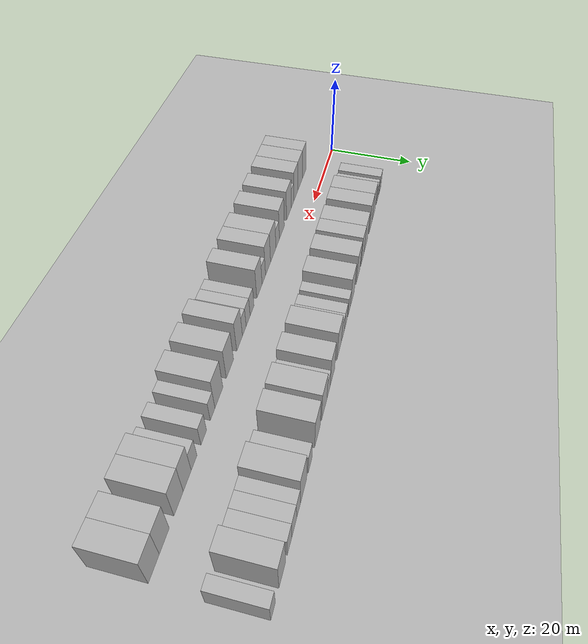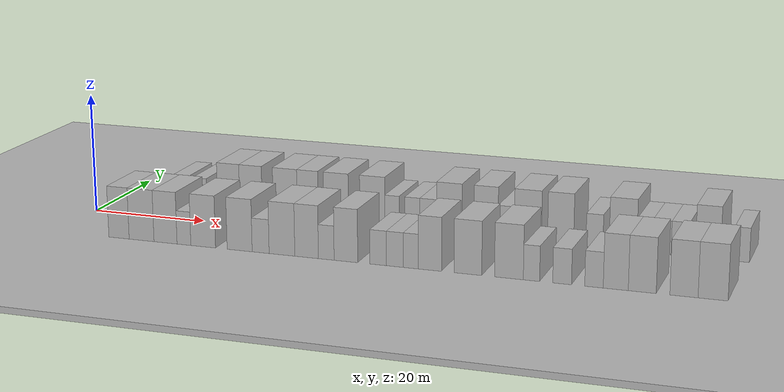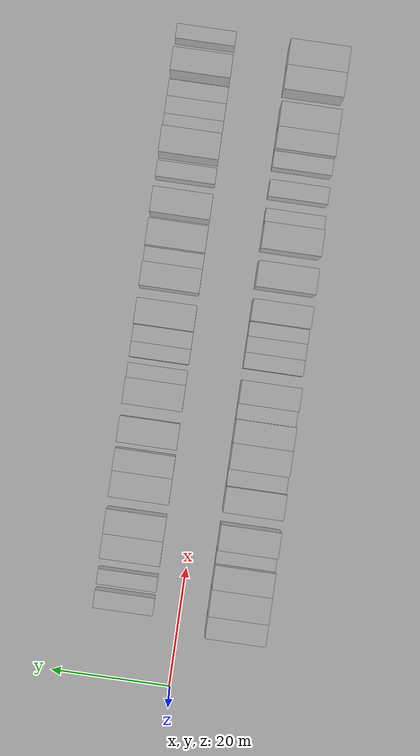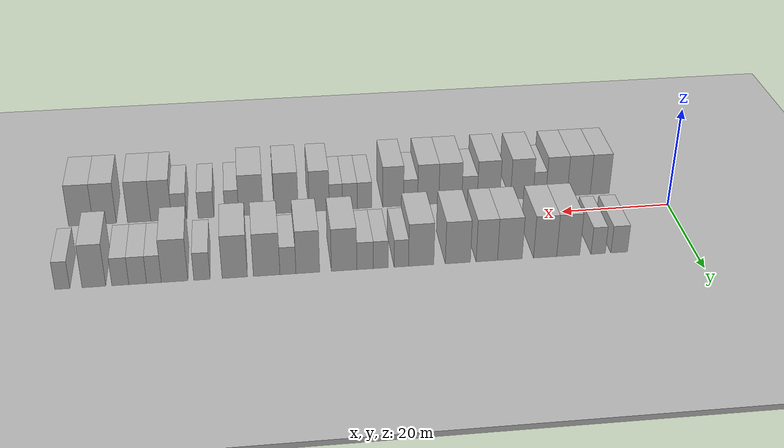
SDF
<sdf version="1.6">
 <world name="default">
  <include><name>ground_plane_1</name><uri>model://HANNAS_ground_plane</uri></include>
  <include>
   <name>ground_plane_2</name>
   <uri>model://HANNAS_ground_plane</uri>
   <pose>100 0 0  0 0 0</pose>
  </include>
  <model name="building_1">
   <static>1</static>
   <pose>13.4734 9.5000 0 0.000000 0.000000 1.570796</pose>
   <link name="link">
    <pose>0 0 3.00 0 0 0</pose>
    <collision name="collision"><geometry><box><size>10.0000 2.9468 6.0000</size></box></geometry></collision>
    <visual name="visual">
     <cast_shadows>0</cast_shadows>
     <geometry><box><size>10.0000 2.9468 6.0000</size></box></geometry>
     <material>
      <script>
       <uri>model://HANNAS_wall/materials/scripts</uri>
       <uri>model://HANNAS_wall/materials/textures</uri>
       <name>vrc/HANNAS_wall</name>
      </script>
     </material>
    </visual>
   </link>
  </model>
  <model name="building_2">
   <static>1</static>
   <pose>17.2123 9.5000 0 0.000000 0.000000 1.570796</pose>
   <link name="link">
    <pose>0 0 3.00 0 0 0</pose>
    <collision name="collision"><geometry><box><size>10.0000 2.5310 6.0000</size></box></geometry></collision>
    <visual name="visual">
     <cast_shadows>0</cast_shadows>
     <geometry><box><size>10.0000 2.5310 6.0000</size></box></geometry>
     <material>
      <script>
       <uri>model://HANNAS_wall/materials/scripts</uri>
       <uri>model://HANNAS_wall/materials/textures</uri>
       <name>vrc/HANNAS_wall</name>
      </script>
     </material>
    </visual>
   </link>
  </model>
  <model name="building_3">
   <static>1</static>
   <pose>22.5105 9.5000 0 0.000000 0.000000 1.570796</pose>
   <link name="link">
    <pose>0 0 4.50 0 0 0</pose>
    <collision name="collision"><geometry><box><size>10.0000 4.0656 9.0000</size></box></geometry></collision>
    <visual name="visual">
     <cast_shadows>0</cast_shadows>
     <geometry><box><size>10.0000 4.0656 9.0000</size></box></geometry>
     <material>
      <script>
       <uri>model://HANNAS_wall/materials/scripts</uri>
       <uri>model://HANNAS_wall/materials/textures</uri>
       <name>vrc/HANNAS_wall</name>
      </script>
     </material>
    </visual>
   </link>
  </model>
  <model name="building_4">
   <static>1</static>
   <pose>26.5862 9.5000 0 0.000000 0.000000 1.570796</pose>
   <link name="link">
    <pose>0 0 4.50 0 0 0</pose>
    <collision name="collision"><geometry><box><size>10.0000 4.0858 9.0000</size></box></geometry></collision>
    <visual name="visual">
     <cast_shadows>0</cast_shadows>
     <geometry><box><size>10.0000 4.0858 9.0000</size></box></geometry>
     <material>
      <script>
       <uri>model://HANNAS_wall/materials/scripts</uri>
       <uri>model://HANNAS_wall/materials/textures</uri>
       <name>vrc/HANNAS_wall</name>
      </script>
     </material>
    </visual>
   </link>
  </model>
  <model name="building_5">
   <static>1</static>
   <pose>32.7871 9.5000 0 0.000000 0.000000 1.570796</pose>
   <link name="link">
    <pose>0 0 4.50 0 0 0</pose>
    <collision name="collision"><geometry><box><size>10.0000 4.3159 9.0000</size></box></geometry></collision>
    <visual name="visual">
     <cast_shadows>0</cast_shadows>
     <geometry><box><size>10.0000 4.3159 9.0000</size></box></geometry>
     <material>
      <script>
       <uri>model://HANNAS_wall/materials/scripts</uri>
       <uri>model://HANNAS_wall/materials/textures</uri>
       <name>vrc/HANNAS_wall</name>
      </script>
     </material>
    </visual>
   </link>
  </model>
  <model name="building_6">
   <static>1</static>
   <pose>36.8116 9.5000 0 0.000000 0.000000 1.570796</pose>
   <link name="link">
    <pose>0 0 4.50 0 0 0</pose>
    <collision name="collision"><geometry><box><size>10.0000 3.7332 9.0000</size></box></geometry></collision>
    <visual name="visual">
     <cast_shadows>0</cast_shadows>
     <geometry><box><size>10.0000 3.7332 9.0000</size></box></geometry>
     <material>
      <script>
       <uri>model://HANNAS_wall/materials/scripts</uri>
       <uri>model://HANNAS_wall/materials/textures</uri>
       <name>vrc/HANNAS_wall</name>
      </script>
     </material>
    </visual>
   </link>
  </model>
  <model name="building_7">
   <static>1</static>
   <pose>41.8527 9.5000 0 0.000000 0.000000 1.570796</pose>
   <link name="link">
    <pose>0 0 4.50 0 0 0</pose>
    <collision name="collision"><geometry><box><size>10.0000 4.3490 9.0000</size></box></geometry></collision>
    <visual name="visual">
     <cast_shadows>0</cast_shadows>
     <geometry><box><size>10.0000 4.3490 9.0000</size></box></geometry>
     <material>
      <script>
       <uri>model://HANNAS_wall/materials/scripts</uri>
       <uri>model://HANNAS_wall/materials/textures</uri>
       <name>vrc/HANNAS_wall</name>
      </script>
     </material>
    </visual>
   </link>
  </model>
  <model name="building_8">
   <static>1</static>
   <pose>48.2076 9.5000 0 0.000000 0.000000 1.570796</pose>
   <link name="link">
    <pose>0 0 4.50 0 0 0</pose>
    <collision name="collision"><geometry><box><size>10.0000 4.3607 9.0000</size></box></geometry></collision>
    <visual name="visual">
     <cast_shadows>0</cast_shadows>
     <geometry><box><size>10.0000 4.3607 9.0000</size></box></geometry>
     <material>
      <script>
       <uri>model://HANNAS_wall/materials/scripts</uri>
       <uri>model://HANNAS_wall/materials/textures</uri>
       <name>vrc/HANNAS_wall</name>
      </script>
     </material>
    </visual>
   </link>
  </model>
  <model name="building_9">
   <static>1</static>
   <pose>51.6281 9.5000 0 0.000000 0.000000 1.570796</pose>
   <link name="link">
    <pose>0 0 3.00 0 0 0</pose>
    <collision name="collision"><geometry><box><size>10.0000 2.4804 6.0000</size></box></geometry></collision>
    <visual name="visual">
     <cast_shadows>0</cast_shadows>
     <geometry><box><size>10.0000 2.4804 6.0000</size></box></geometry>
     <material>
      <script>
       <uri>model://HANNAS_wall/materials/scripts</uri>
       <uri>model://HANNAS_wall/materials/textures</uri>
       <name>vrc/HANNAS_wall</name>
      </script>
     </material>
    </visual>
   </link>
  </model>
  <model name="building_10">
   <static>1</static>
   <pose>55.1466 9.5000 0 0.000000 0.000000 1.570796</pose>
   <link name="link">
    <pose>0 0 3.00 0 0 0</pose>
    <collision name="collision"><geometry><box><size>10.0000 2.5566 6.0000</size></box></geometry></collision>
    <visual name="visual">
     <cast_shadows>0</cast_shadows>
     <geometry><box><size>10.0000 2.5566 6.0000</size></box></geometry>
     <material>
      <script>
       <uri>model://HANNAS_wall/materials/scripts</uri>
       <uri>model://HANNAS_wall/materials/textures</uri>
       <name>vrc/HANNAS_wall</name>
      </script>
     </material>
    </visual>
   </link>
  </model>
  <model name="building_11">
   <static>1</static>
   <pose>57.8463 9.5000 0 0.000000 0.000000 1.570796</pose>
   <link name="link">
    <pose>0 0 3.00 0 0 0</pose>
    <collision name="collision"><geometry><box><size>10.0000 2.8428 6.0000</size></box></geometry></collision>
    <visual name="visual">
     <cast_shadows>0</cast_shadows>
     <geometry><box><size>10.0000 2.8428 6.0000</size></box></geometry>
     <material>
      <script>
       <uri>model://HANNAS_wall/materials/scripts</uri>
       <uri>model://HANNAS_wall/materials/textures</uri>
       <name>vrc/HANNAS_wall</name>
      </script>
     </material>
    </visual>
   </link>
  </model>
  <model name="building_12">
   <static>1</static>
   <pose>61.4304 9.5000 0 0.000000 0.000000 1.570796</pose>
   <link name="link">
    <pose>0 0 4.50 0 0 0</pose>
    <collision name="collision"><geometry><box><size>10.0000 4.3254 9.0000</size></box></geometry></collision>
    <visual name="visual">
     <cast_shadows>0</cast_shadows>
     <geometry><box><size>10.0000 4.3254 9.0000</size></box></geometry>
     <material>
      <script>
       <uri>model://HANNAS_wall/materials/scripts</uri>
       <uri>model://HANNAS_wall/materials/textures</uri>
       <name>vrc/HANNAS_wall</name>
      </script>
     </material>
    </visual>
   </link>
  </model>
  <model name="building_13">
   <static>1</static>
   <pose>67.6052 9.5000 0 0.000000 0.000000 1.570796</pose>
   <link name="link">
    <pose>0 0 4.50 0 0 0</pose>
    <collision name="collision"><geometry><box><size>10.0000 4.0241 9.0000</size></box></geometry></collision>
    <visual name="visual">
     <cast_shadows>0</cast_shadows>
     <geometry><box><size>10.0000 4.0241 9.0000</size></box></geometry>
     <material>
      <script>
       <uri>model://HANNAS_wall/materials/scripts</uri>
       <uri>model://HANNAS_wall/materials/textures</uri>
       <name>vrc/HANNAS_wall</name>
      </script>
     </material>
    </visual>
   </link>
  </model>
  <model name="building_14">
   <static>1</static>
   <pose>70.9708 9.5000 0 0.000000 0.000000 1.570796</pose>
   <link name="link">
    <pose>0 0 3.00 0 0 0</pose>
    <collision name="collision"><geometry><box><size>10.0000 2.7072 6.0000</size></box></geometry></collision>
    <visual name="visual">
     <cast_shadows>0</cast_shadows>
     <geometry><box><size>10.0000 2.7072 6.0000</size></box></geometry>
     <material>
      <script>
       <uri>model://HANNAS_wall/materials/scripts</uri>
       <uri>model://HANNAS_wall/materials/textures</uri>
       <name>vrc/HANNAS_wall</name>
      </script>
     </material>
    </visual>
   </link>
  </model>
  <model name="building_15">
   <static>1</static>
   <pose>74.5617 9.5000 0 0.000000 0.000000 1.570796</pose>
   <link name="link">
    <pose>0 0 4.50 0 0 0</pose>
    <collision name="collision"><geometry><box><size>10.0000 4.4746 9.0000</size></box></geometry></collision>
    <visual name="visual">
     <cast_shadows>0</cast_shadows>
     <geometry><box><size>10.0000 4.4746 9.0000</size></box></geometry>
     <material>
      <script>
       <uri>model://HANNAS_wall/materials/scripts</uri>
       <uri>model://HANNAS_wall/materials/textures</uri>
       <name>vrc/HANNAS_wall</name>
      </script>
     </material>
    </visual>
   </link>
  </model>
  <model name="building_16">
   <static>1</static>
   <pose>79.9236 9.5000 0 0.000000 0.000000 1.570796</pose>
   <link name="link">
    <pose>0 0 4.50 0 0 0</pose>
    <collision name="collision"><geometry><box><size>10.0000 4.2492 9.0000</size></box></geometry></collision>
    <visual name="visual">
     <cast_shadows>0</cast_shadows>
     <geometry><box><size>10.0000 4.2492 9.0000</size></box></geometry>
     <material>
      <script>
       <uri>model://HANNAS_wall/materials/scripts</uri>
       <uri>model://HANNAS_wall/materials/textures</uri>
       <name>vrc/HANNAS_wall</name>
      </script>
     </material>
    </visual>
   </link>
  </model>
  <model name="building_17">
   <static>1</static>
   <pose>85.4104 9.5000 0 0.000000 0.000000 1.570796</pose>
   <link name="link">
    <pose>0 0 3.00 0 0 0</pose>
    <collision name="collision"><geometry><box><size>10.0000 2.7242 6.0000</size></box></geometry></collision>
    <visual name="visual">
     <cast_shadows>0</cast_shadows>
     <geometry><box><size>10.0000 2.7242 6.0000</size></box></geometry>
     <material>
      <script>
       <uri>model://HANNAS_wall/materials/scripts</uri>
       <uri>model://HANNAS_wall/materials/textures</uri>
       <name>vrc/HANNAS_wall</name>
      </script>
     </material>
    </visual>
   </link>
  </model>
  <model name="building_18">
   <static>1</static>
   <pose>89.9734 9.5000 0 0.000000 0.000000 1.570796</pose>
   <link name="link">
    <pose>0 0 4.50 0 0 0</pose>
    <collision name="collision"><geometry><box><size>10.0000 4.4019 9.0000</size></box></geometry></collision>
    <visual name="visual">
     <cast_shadows>0</cast_shadows>
     <geometry><box><size>10.0000 4.4019 9.0000</size></box></geometry>
     <material>
      <script>
       <uri>model://HANNAS_wall/materials/scripts</uri>
       <uri>model://HANNAS_wall/materials/textures</uri>
       <name>vrc/HANNAS_wall</name>
      </script>
     </material>
    </visual>
   </link>
  </model>
  <model name="building_19">
   <static>1</static>
   <pose>93.4013 9.5000 0 0.000000 0.000000 1.570796</pose>
   <link name="link">
    <pose>0 0 3.00 0 0 0</pose>
    <collision name="collision"><geometry><box><size>10.0000 2.4539 6.0000</size></box></geometry></collision>
    <visual name="visual">
     <cast_shadows>0</cast_shadows>
     <geometry><box><size>10.0000 2.4539 6.0000</size></box></geometry>
     <material>
      <script>
       <uri>model://HANNAS_wall/materials/scripts</uri>
       <uri>model://HANNAS_wall/materials/textures</uri>
       <name>vrc/HANNAS_wall</name>
      </script>
     </material>
    </visual>
   </link>
  </model>
  <model name="building_20">
   <static>1</static>
   <pose>96.1024 9.5000 0 0.000000 0.000000 1.570796</pose>
   <link name="link">
    <pose>0 0 3.00 0 0 0</pose>
    <collision name="collision"><geometry><box><size>10.0000 2.9482 6.0000</size></box></geometry></collision>
    <visual name="visual">
     <cast_shadows>0</cast_shadows>
     <geometry><box><size>10.0000 2.9482 6.0000</size></box></geometry>
     <material>
      <script>
       <uri>model://HANNAS_wall/materials/scripts</uri>
       <uri>model://HANNAS_wall/materials/textures</uri>
       <name>vrc/HANNAS_wall</name>
      </script>
     </material>
    </visual>
   </link>
  </model>
  <model name="building_21">
   <static>1</static>
   <pose>98.9699 9.5000 0 0.000000 0.000000 1.570796</pose>
   <link name="link">
    <pose>0 0 3.00 0 0 0</pose>
    <collision name="collision"><geometry><box><size>10.0000 2.7868 6.0000</size></box></geometry></collision>
    <visual name="visual">
     <cast_shadows>0</cast_shadows>
     <geometry><box><size>10.0000 2.7868 6.0000</size></box></geometry>
     <material>
      <script>
       <uri>model://HANNAS_wall/materials/scripts</uri>
       <uri>model://HANNAS_wall/materials/textures</uri>
       <name>vrc/HANNAS_wall</name>
      </script>
     </material>
    </visual>
   </link>
  </model>
  <model name="building_22">
   <static>1</static>
   <pose>103.3101 9.5000 0 0.000000 0.000000 1.570796</pose>
   <link name="link">
    <pose>0 0 4.50 0 0 0</pose>
    <collision name="collision"><geometry><box><size>10.0000 3.8935 9.0000</size></box></geometry></collision>
    <visual name="visual">
     <cast_shadows>0</cast_shadows>
     <geometry><box><size>10.0000 3.8935 9.0000</size></box></geometry>
     <material>
      <script>
       <uri>model://HANNAS_wall/materials/scripts</uri>
       <uri>model://HANNAS_wall/materials/textures</uri>
       <name>vrc/HANNAS_wall</name>
      </script>
     </material>
    </visual>
   </link>
  </model>
  <model name="building_23">
   <static>1</static>
   <pose>108.4847 9.5000 0 0.000000 0.000000 1.570796</pose>
   <link name="link">
    <pose>0 0 3.00 0 0 0</pose>
    <collision name="collision"><geometry><box><size>10.0000 2.4558 6.0000</size></box></geometry></collision>
    <visual name="visual">
     <cast_shadows>0</cast_shadows>
     <geometry><box><size>10.0000 2.4558 6.0000</size></box></geometry>
     <material>
      <script>
       <uri>model://HANNAS_wall/materials/scripts</uri>
       <uri>model://HANNAS_wall/materials/textures</uri>
       <name>vrc/HANNAS_wall</name>
      </script>
     </material>
    </visual>
   </link>
  </model>
  <model name="building_49">
   <static>1</static>
   <pose>11.8109 -9.5000 0 0.000000 0.000000 1.570796</pose>
   <link name="link">
    <pose>0 0 4.50 0 0 0</pose>
    <collision name="collision"><geometry><box><size>10.0000 3.6219 9.0000</size></box></geometry></collision>
    <visual name="visual">
     <cast_shadows>0</cast_shadows>
     <geometry><box><size>10.0000 3.6219 9.0000</size></box></geometry>
     <material>
      <script>
       <uri>model://HANNAS_wall/materials/scripts</uri>
       <uri>model://HANNAS_wall/materials/textures</uri>
       <name>vrc/HANNAS_wall</name>
      </script>
     </material>
    </visual>
   </link>
  </model>
  <model name="building_50">
   <static>1</static>
   <pose>15.8263 -9.5000 0 0.000000 0.000000 1.570796</pose>
   <link name="link">
    <pose>0 0 4.50 0 0 0</pose>
    <collision name="collision"><geometry><box><size>10.0000 4.4089 9.0000</size></box></geometry></collision>
    <visual name="visual">
     <cast_shadows>0</cast_shadows>
     <geometry><box><size>10.0000 4.4089 9.0000</size></box></geometry>
     <material>
      <script>
       <uri>model://HANNAS_wall/materials/scripts</uri>
       <uri>model://HANNAS_wall/materials/textures</uri>
       <name>vrc/HANNAS_wall</name>
      </script>
     </material>
    </visual>
   </link>
  </model>
  <model name="building_51">
   <static>1</static>
   <pose>20.0552 -9.5000 0 0.000000 0.000000 1.570796</pose>
   <link name="link">
    <pose>0 0 4.50 0 0 0</pose>
    <collision name="collision"><geometry><box><size>10.0000 4.0487 9.0000</size></box></geometry></collision>
    <visual name="visual">
     <cast_shadows>0</cast_shadows>
     <geometry><box><size>10.0000 4.0487 9.0000</size></box></geometry>
     <material>
      <script>
       <uri>model://HANNAS_wall/materials/scripts</uri>
       <uri>model://HANNAS_wall/materials/textures</uri>
       <name>vrc/HANNAS_wall</name>
      </script>
     </material>
    </visual>
   </link>
  </model>
  <model name="building_52">
   <static>1</static>
   <pose>23.2805 -9.5000 0 0.000000 0.000000 1.570796</pose>
   <link name="link">
    <pose>0 0 3.00 0 0 0</pose>
    <collision name="collision"><geometry><box><size>10.0000 2.4020 6.0000</size></box></geometry></collision>
    <visual name="visual">
     <cast_shadows>0</cast_shadows>
     <geometry><box><size>10.0000 2.4020 6.0000</size></box></geometry>
     <material>
      <script>
       <uri>model://HANNAS_wall/materials/scripts</uri>
       <uri>model://HANNAS_wall/materials/textures</uri>
       <name>vrc/HANNAS_wall</name>
      </script>
     </material>
    </visual>
   </link>
  </model>
  <model name="building_53">
   <static>1</static>
   <pose>26.6214 -9.5000 0 0.000000 0.000000 1.570796</pose>
   <link name="link">
    <pose>0 0 4.50 0 0 0</pose>
    <collision name="collision"><geometry><box><size>10.0000 4.2799 9.0000</size></box></geometry></collision>
    <visual name="visual">
     <cast_shadows>0</cast_shadows>
     <geometry><box><size>10.0000 4.2799 9.0000</size></box></geometry>
     <material>
      <script>
       <uri>model://HANNAS_wall/materials/scripts</uri>
       <uri>model://HANNAS_wall/materials/textures</uri>
       <name>vrc/HANNAS_wall</name>
      </script>
     </material>
    </visual>
   </link>
  </model>
  <model name="building_54">
   <static>1</static>
   <pose>32.8958 -9.5000 0 0.000000 0.000000 1.570796</pose>
   <link name="link">
    <pose>0 0 4.50 0 0 0</pose>
    <collision name="collision"><geometry><box><size>10.0000 4.2688 9.0000</size></box></geometry></collision>
    <visual name="visual">
     <cast_shadows>0</cast_shadows>
     <geometry><box><size>10.0000 4.2688 9.0000</size></box></geometry>
     <material>
      <script>
       <uri>model://HANNAS_wall/materials/scripts</uri>
       <uri>model://HANNAS_wall/materials/textures</uri>
       <name>vrc/HANNAS_wall</name>
      </script>
     </material>
    </visual>
   </link>
  </model>
  <model name="building_55">
   <static>1</static>
   <pose>36.4688 -9.5000 0 0.000000 0.000000 1.570796</pose>
   <link name="link">
    <pose>0 0 3.00 0 0 0</pose>
    <collision name="collision"><geometry><box><size>10.0000 2.8772 6.0000</size></box></geometry></collision>
    <visual name="visual">
     <cast_shadows>0</cast_shadows>
     <geometry><box><size>10.0000 2.8772 6.0000</size></box></geometry>
     <material>
      <script>
       <uri>model://HANNAS_wall/materials/scripts</uri>
       <uri>model://HANNAS_wall/materials/textures</uri>
       <name>vrc/HANNAS_wall</name>
      </script>
     </material>
    </visual>
   </link>
  </model>
  <model name="building_56">
   <static>1</static>
   <pose>40.0684 -9.5000 0 0.000000 0.000000 1.570796</pose>
   <link name="link">
    <pose>0 0 4.50 0 0 0</pose>
    <collision name="collision"><geometry><box><size>10.0000 4.3221 9.0000</size></box></geometry></collision>
    <visual name="visual">
     <cast_shadows>0</cast_shadows>
     <geometry><box><size>10.0000 4.3221 9.0000</size></box></geometry>
     <material>
      <script>
       <uri>model://HANNAS_wall/materials/scripts</uri>
       <uri>model://HANNAS_wall/materials/textures</uri>
       <name>vrc/HANNAS_wall</name>
      </script>
     </material>
    </visual>
   </link>
  </model>
  <model name="building_57">
   <static>1</static>
   <pose>44.1926 -9.5000 0 0.000000 0.000000 1.570796</pose>
   <link name="link">
    <pose>0 0 4.50 0 0 0</pose>
    <collision name="collision"><geometry><box><size>10.0000 3.9262 9.0000</size></box></geometry></collision>
    <visual name="visual">
     <cast_shadows>0</cast_shadows>
     <geometry><box><size>10.0000 3.9262 9.0000</size></box></geometry>
     <material>
      <script>
       <uri>model://HANNAS_wall/materials/scripts</uri>
       <uri>model://HANNAS_wall/materials/textures</uri>
       <name>vrc/HANNAS_wall</name>
      </script>
     </material>
    </visual>
   </link>
  </model>
  <model name="building_58">
   <static>1</static>
   <pose>47.4564 -9.5000 0 0.000000 0.000000 1.570796</pose>
   <link name="link">
    <pose>0 0 3.00 0 0 0</pose>
    <collision name="collision"><geometry><box><size>10.0000 2.6013 6.0000</size></box></geometry></collision>
    <visual name="visual">
     <cast_shadows>0</cast_shadows>
     <geometry><box><size>10.0000 2.6013 6.0000</size></box></geometry>
     <material>
      <script>
       <uri>model://HANNAS_wall/materials/scripts</uri>
       <uri>model://HANNAS_wall/materials/textures</uri>
       <name>vrc/HANNAS_wall</name>
      </script>
     </material>
    </visual>
   </link>
  </model>
  <model name="building_59">
   <static>1</static>
   <pose>50.6944 -9.5000 0 0.000000 0.000000 1.570796</pose>
   <link name="link">
    <pose>0 0 4.50 0 0 0</pose>
    <collision name="collision"><geometry><box><size>10.0000 3.8748 9.0000</size></box></geometry></collision>
    <visual name="visual">
     <cast_shadows>0</cast_shadows>
     <geometry><box><size>10.0000 3.8748 9.0000</size></box></geometry>
     <material>
      <script>
       <uri>model://HANNAS_wall/materials/scripts</uri>
       <uri>model://HANNAS_wall/materials/textures</uri>
       <name>vrc/HANNAS_wall</name>
      </script>
     </material>
    </visual>
   </link>
  </model>
  <model name="building_60">
   <static>1</static>
   <pose>55.9713 -9.5000 0 0.000000 0.000000 1.570796</pose>
   <link name="link">
    <pose>0 0 3.00 0 0 0</pose>
    <collision name="collision"><geometry><box><size>10.0000 2.6790 6.0000</size></box></geometry></collision>
    <visual name="visual">
     <cast_shadows>0</cast_shadows>
     <geometry><box><size>10.0000 2.6790 6.0000</size></box></geometry>
     <material>
      <script>
       <uri>model://HANNAS_wall/materials/scripts</uri>
       <uri>model://HANNAS_wall/materials/textures</uri>
       <name>vrc/HANNAS_wall</name>
      </script>
     </material>
    </visual>
   </link>
  </model>
  <model name="building_61">
   <static>1</static>
   <pose>58.6666 -9.5000 0 0.000000 0.000000 1.570796</pose>
   <link name="link">
    <pose>0 0 3.00 0 0 0</pose>
    <collision name="collision"><geometry><box><size>10.0000 2.7116 6.0000</size></box></geometry></collision>
    <visual name="visual">
     <cast_shadows>0</cast_shadows>
     <geometry><box><size>10.0000 2.7116 6.0000</size></box></geometry>
     <material>
      <script>
       <uri>model://HANNAS_wall/materials/scripts</uri>
       <uri>model://HANNAS_wall/materials/textures</uri>
       <name>vrc/HANNAS_wall</name>
      </script>
     </material>
    </visual>
   </link>
  </model>
  <model name="building_62">
   <static>1</static>
   <pose>61.2330 -9.5000 0 0.000000 0.000000 1.570796</pose>
   <link name="link">
    <pose>0 0 3.00 0 0 0</pose>
    <collision name="collision"><geometry><box><size>10.0000 2.4212 6.0000</size></box></geometry></collision>
    <visual name="visual">
     <cast_shadows>0</cast_shadows>
     <geometry><box><size>10.0000 2.4212 6.0000</size></box></geometry>
     <material>
      <script>
       <uri>model://HANNAS_wall/materials/scripts</uri>
       <uri>model://HANNAS_wall/materials/textures</uri>
       <name>vrc/HANNAS_wall</name>
      </script>
     </material>
    </visual>
   </link>
  </model>
  <model name="building_63">
   <static>1</static>
   <pose>64.2825 -9.5000 0 0.000000 0.000000 1.570796</pose>
   <link name="link">
    <pose>0 0 4.50 0 0 0</pose>
    <collision name="collision"><geometry><box><size>10.0000 3.6779 9.0000</size></box></geometry></collision>
    <visual name="visual">
     <cast_shadows>0</cast_shadows>
     <geometry><box><size>10.0000 3.6779 9.0000</size></box></geometry>
     <material>
      <script>
       <uri>model://HANNAS_wall/materials/scripts</uri>
       <uri>model://HANNAS_wall/materials/textures</uri>
       <name>vrc/HANNAS_wall</name>
      </script>
     </material>
    </visual>
   </link>
  </model>
  <model name="building_64">
   <static>1</static>
   <pose>70.2888 -9.5000 0 0.000000 0.000000 1.570796</pose>
   <link name="link">
    <pose>0 0 4.50 0 0 0</pose>
    <collision name="collision"><geometry><box><size>10.0000 4.3346 9.0000</size></box></geometry></collision>
    <visual name="visual">
     <cast_shadows>0</cast_shadows>
     <geometry><box><size>10.0000 4.3346 9.0000</size></box></geometry>
     <material>
      <script>
       <uri>model://HANNAS_wall/materials/scripts</uri>
       <uri>model://HANNAS_wall/materials/textures</uri>
       <name>vrc/HANNAS_wall</name>
      </script>
     </material>
    </visual>
   </link>
  </model>
  <model name="building_65">
   <static>1</static>
   <pose>76.6832 -9.5000 0 0.000000 0.000000 1.570796</pose>
   <link name="link">
    <pose>0 0 4.50 0 0 0</pose>
    <collision name="collision"><geometry><box><size>10.0000 4.4542 9.0000</size></box></geometry></collision>
    <visual name="visual">
     <cast_shadows>0</cast_shadows>
     <geometry><box><size>10.0000 4.4542 9.0000</size></box></geometry>
     <material>
      <script>
       <uri>model://HANNAS_wall/materials/scripts</uri>
       <uri>model://HANNAS_wall/materials/textures</uri>
       <name>vrc/HANNAS_wall</name>
      </script>
     </material>
    </visual>
   </link>
  </model>
  <model name="building_66">
   <static>1</static>
   <pose>80.1614 -9.5000 0 0.000000 0.000000 1.570796</pose>
   <link name="link">
    <pose>0 0 3.00 0 0 0</pose>
    <collision name="collision"><geometry><box><size>10.0000 2.5023 6.0000</size></box></geometry></collision>
    <visual name="visual">
     <cast_shadows>0</cast_shadows>
     <geometry><box><size>10.0000 2.5023 6.0000</size></box></geometry>
     <material>
      <script>
       <uri>model://HANNAS_wall/materials/scripts</uri>
       <uri>model://HANNAS_wall/materials/textures</uri>
       <name>vrc/HANNAS_wall</name>
      </script>
     </material>
    </visual>
   </link>
  </model>
  <model name="building_67">
   <static>1</static>
   <pose>84.8377 -9.5000 0 0.000000 0.000000 1.570796</pose>
   <link name="link">
    <pose>0 0 3.00 0 0 0</pose>
    <collision name="collision"><geometry><box><size>10.0000 2.8502 6.0000</size></box></geometry></collision>
    <visual name="visual">
     <cast_shadows>0</cast_shadows>
     <geometry><box><size>10.0000 2.8502 6.0000</size></box></geometry>
     <material>
      <script>
       <uri>model://HANNAS_wall/materials/scripts</uri>
       <uri>model://HANNAS_wall/materials/textures</uri>
       <name>vrc/HANNAS_wall</name>
      </script>
     </material>
    </visual>
   </link>
  </model>
  <model name="building_68">
   <static>1</static>
   <pose>89.6519 -9.5000 0 0.000000 0.000000 1.570796</pose>
   <link name="link">
    <pose>0 0 3.00 0 0 0</pose>
    <collision name="collision"><geometry><box><size>10.0000 2.7781 6.0000</size></box></geometry></collision>
    <visual name="visual">
     <cast_shadows>0</cast_shadows>
     <geometry><box><size>10.0000 2.7781 6.0000</size></box></geometry>
     <material>
      <script>
       <uri>model://HANNAS_wall/materials/scripts</uri>
       <uri>model://HANNAS_wall/materials/textures</uri>
       <name>vrc/HANNAS_wall</name>
      </script>
     </material>
    </visual>
   </link>
  </model>
  <model name="building_69">
   <static>1</static>
   <pose>92.9058 -9.5000 0 0.000000 0.000000 1.570796</pose>
   <link name="link">
    <pose>0 0 4.50 0 0 0</pose>
    <collision name="collision"><geometry><box><size>10.0000 3.7297 9.0000</size></box></geometry></collision>
    <visual name="visual">
     <cast_shadows>0</cast_shadows>
     <geometry><box><size>10.0000 3.7297 9.0000</size></box></geometry>
     <material>
      <script>
       <uri>model://HANNAS_wall/materials/scripts</uri>
       <uri>model://HANNAS_wall/materials/textures</uri>
       <name>vrc/HANNAS_wall</name>
      </script>
     </material>
    </visual>
   </link>
  </model>
  <model name="building_70">
   <static>1</static>
   <pose>96.8343 -9.5000 0 0.000000 0.000000 1.570796</pose>
   <link name="link">
    <pose>0 0 4.50 0 0 0</pose>
    <collision name="collision"><geometry><box><size>10.0000 4.1273 9.0000</size></box></geometry></collision>
    <visual name="visual">
     <cast_shadows>0</cast_shadows>
     <geometry><box><size>10.0000 4.1273 9.0000</size></box></geometry>
     <material>
      <script>
       <uri>model://HANNAS_wall/materials/scripts</uri>
       <uri>model://HANNAS_wall/materials/textures</uri>
       <name>vrc/HANNAS_wall</name>
      </script>
     </material>
    </visual>
   </link>
  </model>
  <model name="building_71">
   <static>1</static>
   <pose>102.9509 -9.5000 0 0.000000 0.000000 1.570796</pose>
   <link name="link">
    <pose>0 0 4.50 0 0 0</pose>
    <collision name="collision"><geometry><box><size>10.0000 4.1059 9.0000</size></box></geometry></collision>
    <visual name="visual">
     <cast_shadows>0</cast_shadows>
     <geometry><box><size>10.0000 4.1059 9.0000</size></box></geometry>
     <material>
      <script>
       <uri>model://HANNAS_wall/materials/scripts</uri>
       <uri>model://HANNAS_wall/materials/textures</uri>
       <name>vrc/HANNAS_wall</name>
      </script>
     </material>
    </visual>
   </link>
  </model>
  <model name="building_72">
   <static>1</static>
   <pose>107.1671 -9.5000 0 0.000000 0.000000 1.570796</pose>
   <link name="link">
    <pose>0 0 4.50 0 0 0</pose>
    <collision name="collision"><geometry><box><size>10.0000 4.3267 9.0000</size></box></geometry></collision>
    <visual name="visual">
     <cast_shadows>0</cast_shadows>
     <geometry><box><size>10.0000 4.3267 9.0000</size></box></geometry>
     <material>
      <script>
       <uri>model://HANNAS_wall/materials/scripts</uri>
       <uri>model://HANNAS_wall/materials/textures</uri>
       <name>vrc/HANNAS_wall</name>
      </script>
     </material>
    </visual>
   </link>
  </model>
 </world>
</sdf>
